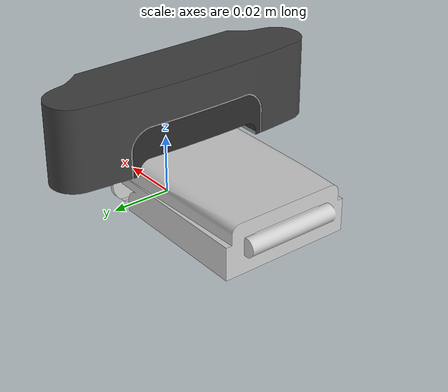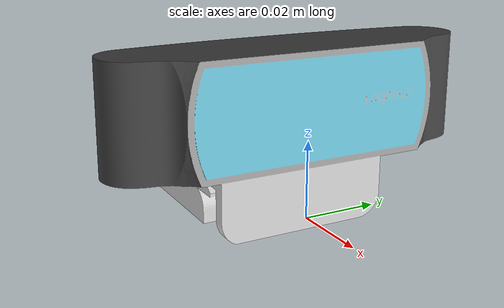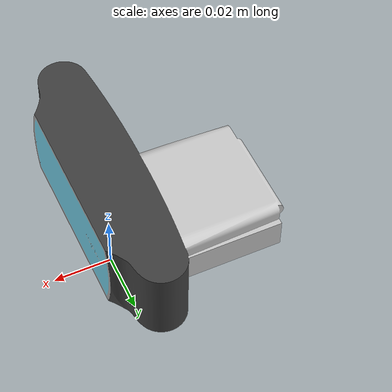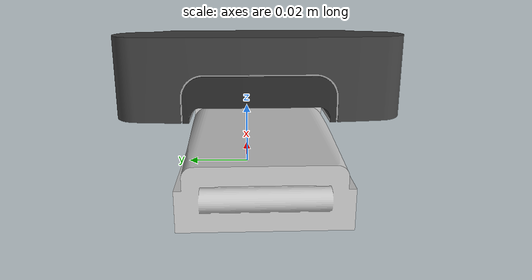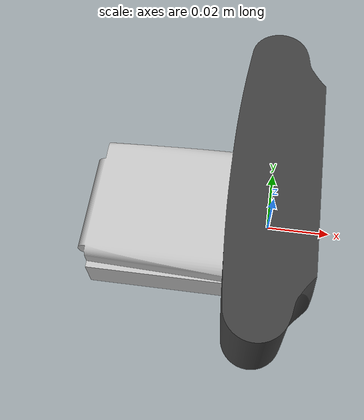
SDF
<?xml version="1.0"?>
<sdf version="1.9">
    <model name="logitech_c920">
        <link name="logitech_c920">
            <inertial>
                <mass>0.005</mass>
                <inertia>
                    <ixx>8.33e-06</ixx>
                    <ixy>0</ixy>
                    <ixz>0</ixz>
                    <iyy>8.33e-06</iyy>
                    <iyz>0</iyz>
                    <izz>8.33e-06</izz>
                </inertia>
            </inertial>
            <sensor name="camera" type="camera">
                <pose>0.003 0 0 0 0 0</pose>
                <always_on>1</always_on>
                <update_rate>20</update_rate>
                <camera name="camera">
                    <horizontal_fov>1.0472</horizontal_fov>
                    <lens>
                        <intrinsics>
                            <!-- fx = fy = width / ( 2 * tan (hfov / 2 ) ) -->
                            <fx>1108.5</fx>
                            <fy>1108.5</fy>
                            <!-- cx = ( width + 1 ) / 2 -->
                            <cx>640.5</cx>
                            <!-- cy = ( height + 1 ) / 2 -->
                            <cy>480.5</cy>
                            <s>0</s>
                        </intrinsics>
                    </lens>
                    <image>
                        <width>1280</width>
                        <height>960</height>
                        <format>R8G8B8</format>
                    </image>
                    <clip>
                        <near>0.01</near>
                        <far>300</far>
                    </clip>
                    <noise>
                        <type>gaussian</type>
                        <mean>0</mean>
                        <stddev>0.007</stddev>
                    </noise>
                 </camera>
             </sensor>
            <visual name="visual">
              <pose>0 0 0 0 0 -1.5707</pose>
              <geometry>
                <mesh>
                  <uri>model://logitech_c920/meshes/logitech_c920.dae</uri>
                </mesh>
              </geometry>
            </visual>
         </link>
    </model>
</sdf>
